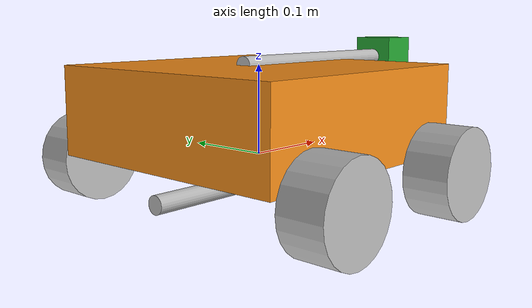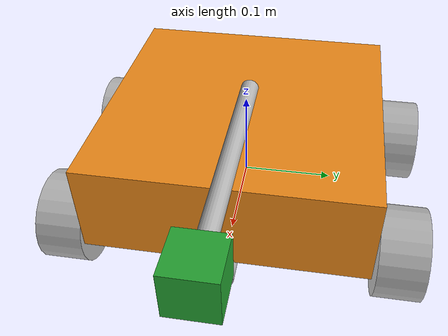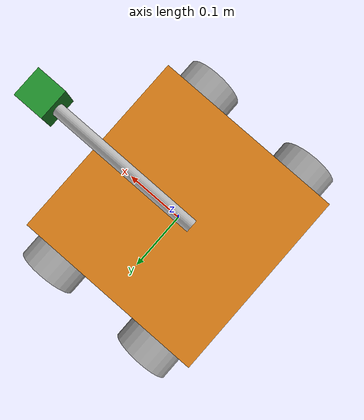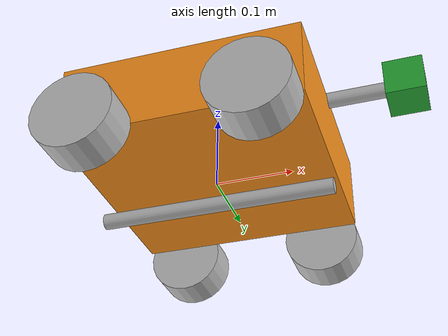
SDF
<?xml version='1.0'?>
<sdf version='1.6'>
  <model name='hitter_pole_fric'>
    <link name='chassis'>
      <pose frame=''>0 0 0 0 -0 0</pose>
      <inertial>
        <pose frame=''>0.000125 0 0.124988 0 -0 0</pose>
        <mass>20.01</mass>
        <inertia>
          <ixx>1.11251</ixx>
          <ixy>0</ixy>
          <ixz>6.24688e-05</ixz>
          <iyy>2.11313</iyy>
          <iyz>0</iyz>
          <izz>0.200626</izz>
        </inertia>
      </inertial>
      <self_collide>0</self_collide>
      <kinematic>0</kinematic>
      <velocity_decay/>
      <sensor name='camera1' type='camera'>
        <update_rate>30</update_rate>
        <camera name='chassis'>
          <horizontal_fov>1.39626</horizontal_fov>
          <image>
            <width>800</width>
            <height>800</height>
            <format>R8G8B8</format>
          </image>
          <clip>
            <near>0.02</near>
            <far>300</far>
          </clip>
        </camera>
        <plugin name='camera_controller' filename='libgazebo_ros_camera.so'>
          <alwaysOn>true</alwaysOn>
          <updateRate>0.0</updateRate>
          <cameraName>mybot/camera1</cameraName>
          <imageTopicName>image_raw</imageTopicName>
          <cameraInfoTopicName>camera_info</cameraInfoTopicName>
          <frameName>camera</frameName>
          <hackBaseline>0.07</hackBaseline>
          <distortionK1>0.0</distortionK1>
          <distortionK2>0.0</distortionK2>
          <distortionK3>0.0</distortionK3>
          <distortionT1>0.0</distortionT1>
          <distortionT2>0.0</distortionT2>
          <robotNamespace>/mybot/</robotNamespace>
        </plugin>
        <pose frame=''>0.25 0 0.1 3.14159 1.57079 3.14159</pose>
      </sensor>
      <visual name='chassis_visual_visual'>
        <pose frame=''>0 0 0.05 0 -0 0</pose>
        <geometry>
          <box>
            <size>0.3 0.3 0.1</size>
          </box>
        </geometry>
        <material>
          <script>
            <name>Gazebo/Orange</name>
            <uri>file://media/materials/scripts/gazebo.material</uri>
          </script>
          <ambient>1 0.5088 0.0468 1</ambient>
          <diffuse>1 0.5088 0.0468 1</diffuse>
          <specular>0.5 0.5 0.5 1</specular>
          <emissive>0 0 0 1</emissive>
        </material>
        <cast_shadows>1</cast_shadows>
        <transparency>0</transparency>
      </visual>
      <visual name='chassis_fixed_joint_lump__camera_pole_visual_1'>
        <pose frame=''>0.1 0 0.1 1.57075 0 1.57075</pose>
        <geometry>
          <cylinder>
            <length>0.25</length>
            <radius>0.01</radius>
          </cylinder>
        </geometry>
        <cast_shadows>1</cast_shadows>
        <transparency>0</transparency>
      </visual>
      <visual name='chassis_fixed_joint_lump__camera_visual_2'>
        <pose frame=''>0.25 0 0.1 3.14159 1.57079 3.14159</pose>
        <geometry>
          <box>
            <size>0.05 0.05 0.05</size>
          </box>
        </geometry>
        <material>
          <script>
            <name>Gazebo/Green</name>
            <uri>file://media/materials/scripts/gazebo.material</uri>
          </script>
          <ambient>0 1 0 1</ambient>
          <diffuse>0 1 0 1</diffuse>
          <specular>0.1 0.1 0.1 1</specular>
          <emissive>0 0 0 1</emissive>
        </material>
        <cast_shadows>1</cast_shadows>
        <transparency>0</transparency>
      </visual>
      <collision name='chassis_fixed_joint_lump__collision_collision'>
        <laser_retro>0</laser_retro>
        <max_contacts>10</max_contacts>
        <pose frame=''>0 0 0.05 0 -0 0</pose>
        <geometry>
          <box>
            <size>0.3 0.3 0.1</size>
          </box>
        </geometry>
        <surface>
          <friction>
            <ode>
              <mu>1</mu>
              <mu2>1</mu2>
              <fdir1>0 0 0</fdir1>
              <slip1>0</slip1>
              <slip2>0</slip2>
            </ode>
            <torsional>
              <coefficient>1</coefficient>
              <patch_radius>0</patch_radius>
              <surface_radius>0</surface_radius>
              <use_patch_radius>1</use_patch_radius>
              <ode>
                <slip>0</slip>
              </ode>
            </torsional>
          </friction>
          <bounce>
            <restitution_coefficient>0</restitution_coefficient>
            <threshold>1e+06</threshold>
          </bounce>
          <contact>
            <collide_without_contact>0</collide_without_contact>
            <collide_without_contact_bitmask>1</collide_without_contact_bitmask>
            <collide_bitmask>1</collide_bitmask>
            <ode>
              <soft_cfm>0</soft_cfm>
              <soft_erp>0.2</soft_erp>
              <kp>1e+13</kp>
              <kd>1</kd>
              <max_vel>0.01</max_vel>
              <min_depth>0</min_depth>
            </ode>
            <bullet>
              <split_impulse>1</split_impulse>
              <split_impulse_penetration_threshold>-0.01</split_impulse_penetration_threshold>
              <soft_cfm>0</soft_cfm>
              <soft_erp>0.2</soft_erp>
              <kp>1e+13</kp>
              <kd>1</kd>
            </bullet>
          </contact>
        </surface>
      </collision>
      <collision name='chassis_fixed_joint_lump__collision_collision_1'>
        <laser_retro>0</laser_retro>
        <max_contacts>10</max_contacts>
        <pose frame=''>0.1 0 0.1 3.14159 1.57079 3.14159</pose>
        <geometry>
          <cylinder>
            <radius>0.01</radius>
            <length>0.25</length>
          </cylinder>
        </geometry>
        <surface>
          <friction>
            <ode>
              <mu>1</mu>
              <mu2>1</mu2>
              <fdir1>0 0 0</fdir1>
              <slip1>0</slip1>
              <slip2>0</slip2>
            </ode>
            <torsional>
              <coefficient>1</coefficient>
              <patch_radius>0</patch_radius>
              <surface_radius>0</surface_radius>
              <use_patch_radius>1</use_patch_radius>
              <ode>
                <slip>0</slip>
              </ode>
            </torsional>
          </friction>
          <bounce>
            <restitution_coefficient>0</restitution_coefficient>
            <threshold>1e+06</threshold>
          </bounce>
          <contact>
            <collide_without_contact>0</collide_without_contact>
            <collide_without_contact_bitmask>1</collide_without_contact_bitmask>
            <collide_bitmask>1</collide_bitmask>
            <ode>
              <soft_cfm>0</soft_cfm>
              <soft_erp>0.2</soft_erp>
              <kp>1e+13</kp>
              <kd>1</kd>
              <max_vel>0.01</max_vel>
              <min_depth>0</min_depth>
            </ode>
            <bullet>
              <split_impulse>1</split_impulse>
              <split_impulse_penetration_threshold>-0.01</split_impulse_penetration_threshold>
              <soft_cfm>0</soft_cfm>
              <soft_erp>0.2</soft_erp>
              <kp>1e+13</kp>
              <kd>1</kd>
            </bullet>
          </contact>
        </surface>
      </collision>
      <collision name='chassis_fixed_joint_lump__camera_collision_2'>
        <laser_retro>0</laser_retro>
        <max_contacts>10</max_contacts>
        <pose frame=''>0.25 0 0.1 3.14159 1.57079 3.14159</pose>
        <geometry>
          <box>
            <size>0.05 0.05 0.05</size>
          </box>
        </geometry>
        <surface>
          <friction>
            <ode>
              <mu>1</mu>
              <mu2>1</mu2>
              <fdir1>0 0 0</fdir1>
              <slip1>0</slip1>
              <slip2>0</slip2>
            </ode>
            <torsional>
              <coefficient>1</coefficient>
              <patch_radius>0</patch_radius>
              <surface_radius>0</surface_radius>
              <use_patch_radius>1</use_patch_radius>
              <ode>
                <slip>0</slip>
              </ode>
            </torsional>
          </friction>
          <bounce>
            <restitution_coefficient>0</restitution_coefficient>
            <threshold>1e+06</threshold>
          </bounce>
          <contact>
            <collide_without_contact>0</collide_without_contact>
            <collide_without_contact_bitmask>1</collide_without_contact_bitmask>
            <collide_bitmask>1</collide_bitmask>
            <ode>
              <soft_cfm>0</soft_cfm>
              <soft_erp>0.2</soft_erp>
              <kp>1e+13</kp>
              <kd>1</kd>
              <max_vel>0.01</max_vel>
              <min_depth>0</min_depth>
            </ode>
            <bullet>
              <split_impulse>1</split_impulse>
              <split_impulse_penetration_threshold>-0.01</split_impulse_penetration_threshold>
              <soft_cfm>0</soft_cfm>
              <soft_erp>0.2</soft_erp>
              <kp>1e+13</kp>
              <kd>1</kd>
            </bullet>
          </contact>
        </surface>
      </collision>
    </link>
    <link name='gripper_pole'>
      <pose frame=''>-0.1 -0 -0.03 0 -0 0</pose>
      <inertial>
        <pose frame=''>0 0 0.1 0 -0 0</pose>
        <mass>10</mass>
        <inertia>
          <ixx>0.5</ixx>
          <ixy>0</ixy>
          <ixz>0</ixz>
          <iyy>1</iyy>
          <iyz>0</iyz>
          <izz>0.1</izz>
        </inertia>
      </inertial>
      <self_collide>0</self_collide>
      <kinematic>0</kinematic>
      <visual name='gripper_pole_visual'>
        <pose frame=''>0.1 0 0 1.57075 0 1.57075</pose>
        <geometry>
          <cylinder>
            <length>0.3</length>
            <radius>0.01</radius>
          </cylinder>
        </geometry>
        <cast_shadows>1</cast_shadows>
        <transparency>0</transparency>
      </visual>
      <collision name='gripper_pole_fixed_joint_lump__collision_collision'>
        <laser_retro>0</laser_retro>
        <max_contacts>10</max_contacts>
        <pose frame=''>0.1 0 0 3.14159 1.57079 3.14159</pose>
        <geometry>
          <cylinder>
            <radius>0.01</radius>
            <length>0.25</length>
          </cylinder>
        </geometry>
        <surface>
          <friction>
            <ode>
              <mu>1</mu>
              <mu2>1</mu2>
              <fdir1>0 0 0</fdir1>
              <slip1>0</slip1>
              <slip2>0</slip2>
            </ode>
            <torsional>
              <coefficient>1</coefficient>
              <patch_radius>0</patch_radius>
              <surface_radius>0</surface_radius>
              <use_patch_radius>1</use_patch_radius>
              <ode>
                <slip>0</slip>
              </ode>
            </torsional>
          </friction>
          <bounce>
            <restitution_coefficient>0</restitution_coefficient>
            <threshold>1e+06</threshold>
          </bounce>
          <contact>
            <collide_without_contact>0</collide_without_contact>
            <collide_without_contact_bitmask>1</collide_without_contact_bitmask>
            <collide_bitmask>1</collide_bitmask>
            <ode>
              <soft_cfm>0</soft_cfm>
              <soft_erp>0.2</soft_erp>
              <kp>1e+13</kp>
              <kd>1</kd>
              <max_vel>0.01</max_vel>
              <min_depth>0</min_depth>
            </ode>
            <bullet>
              <split_impulse>1</split_impulse>
              <split_impulse_penetration_threshold>-0.01</split_impulse_penetration_threshold>
              <soft_cfm>0</soft_cfm>
              <soft_erp>0.2</soft_erp>
              <kp>1e+13</kp>
              <kd>1</kd>
            </bullet>
          </contact>
        </surface>
      </collision>
    </link>
    <link name='left_back_wheel'>
      <pose frame=''>-0.1 0.18 -0.01 0 -0 0</pose>
      <inertial>
        <pose frame=''>0 0 0 -0 1.5707 1.5707</pose>
        <mass>5</mass>
        <inertia>
          <ixx>1</ixx>
          <ixy>0</ixy>
          <ixz>0</ixz>
          <iyy>1</iyy>
          <iyz>0</iyz>
          <izz>1</izz>
        </inertia>
      </inertial>
      <self_collide>0</self_collide>
      <kinematic>0</kinematic>
      <gravity>1</gravity>
      <visual name='left_back_wheel_fixed_joint_lump__left_wheel_visual_visual'>
        <pose frame=''>0 0 0 -3.13202 1.57079 -1.56132</pose>
        <geometry>
          <cylinder>
            <length>0.05</length>
            <radius>0.05</radius>
          </cylinder>
        </geometry>
        <cast_shadows>1</cast_shadows>
        <transparency>0</transparency>
        <material>
          <shader type='vertex'>
            <normal_map>__default__</normal_map>
          </shader>
        </material>
      </visual>
      <collision name='left_back_wheel_fixed_joint_lump__collision_collision'>
        <laser_retro>0</laser_retro>
        <max_contacts>10</max_contacts>
        <pose frame=''>0 0 0 3.14159 1.57079 -1.57089</pose>
        <geometry>
          <cylinder>
            <radius>0.05</radius>
            <length>0.05</length>
          </cylinder>
        </geometry>
        <surface>
          <friction>
            <ode>
              <mu>200</mu>
              <mu2>100</mu2>
              <fdir1>0 0 0</fdir1>
              <slip1>0</slip1>
              <slip2>0</slip2>
            </ode>
            <torsional>
              <coefficient>1</coefficient>
              <patch_radius>0</patch_radius>
              <surface_radius>0</surface_radius>
              <use_patch_radius>1</use_patch_radius>
              <ode>
                <slip>0</slip>
              </ode>
            </torsional>
          </friction>
          <bounce>
            <restitution_coefficient>0</restitution_coefficient>
            <threshold>1e+06</threshold>
          </bounce>
          <contact>
            <collide_without_contact>0</collide_without_contact>
            <collide_without_contact_bitmask>1</collide_without_contact_bitmask>
            <collide_bitmask>1</collide_bitmask>
            <ode>
              <soft_cfm>0</soft_cfm>
              <soft_erp>0.2</soft_erp>
              <kp>1e+13</kp>
              <kd>1</kd>
              <max_vel>0.01</max_vel>
              <min_depth>0</min_depth>
            </ode>
            <bullet>
              <split_impulse>1</split_impulse>
              <split_impulse_penetration_threshold>-0.01</split_impulse_penetration_threshold>
              <soft_cfm>0</soft_cfm>
              <soft_erp>0.2</soft_erp>
              <kp>1e+13</kp>
              <kd>1</kd>
            </bullet>
          </contact>
        </surface>
      </collision>
    </link>
    <link name='left_wheel'>
      <pose frame=''>0.1 0.18 -0.01 0 -0 0</pose>
      <inertial>
        <pose frame=''>0 0 0 -0 1.5707 1.5707</pose>
        <mass>5</mass>
        <inertia>
          <ixx>1</ixx>
          <ixy>0</ixy>
          <ixz>0</ixz>
          <iyy>1</iyy>
          <iyz>0</iyz>
          <izz>1</izz>
        </inertia>
      </inertial>
      <self_collide>0</self_collide>
      <kinematic>0</kinematic>
      <gravity>1</gravity>
      <visual name='left_wheel_visual_visual'>
        <pose frame=''>0 0 0 -3.13202 1.57079 -1.56132</pose>
        <geometry>
          <cylinder>
            <length>0.05</length>
            <radius>0.05</radius>
          </cylinder>
        </geometry>
        <cast_shadows>1</cast_shadows>
        <transparency>0</transparency>
        <material>
          <shader type='vertex'>
            <normal_map>__default__</normal_map>
          </shader>
        </material>
      </visual>
      <collision name='left_wheel_fixed_joint_lump__collision_collision'>
        <laser_retro>0</laser_retro>
        <max_contacts>10</max_contacts>
        <pose frame=''>0 0 0 3.14159 1.57079 -1.57089</pose>
        <geometry>
          <cylinder>
            <radius>0.05</radius>
            <length>0.05</length>
          </cylinder>
        </geometry>
        <surface>
          <friction>
            <ode>
              <mu>200</mu>
              <mu2>100</mu2>
              <fdir1>0 0 0</fdir1>
              <slip1>0</slip1>
              <slip2>0</slip2>
            </ode>
            <torsional>
              <coefficient>1</coefficient>
              <patch_radius>0</patch_radius>
              <surface_radius>0</surface_radius>
              <use_patch_radius>1</use_patch_radius>
              <ode>
                <slip>0</slip>
              </ode>
            </torsional>
          </friction>
          <bounce>
            <restitution_coefficient>0</restitution_coefficient>
            <threshold>1e+06</threshold>
          </bounce>
          <contact>
            <collide_without_contact>0</collide_without_contact>
            <collide_without_contact_bitmask>1</collide_without_contact_bitmask>
            <collide_bitmask>1</collide_bitmask>
            <ode>
              <soft_cfm>0</soft_cfm>
              <soft_erp>0.2</soft_erp>
              <kp>1e+13</kp>
              <kd>1</kd>
              <max_vel>0.01</max_vel>
              <min_depth>0</min_depth>
            </ode>
            <bullet>
              <split_impulse>1</split_impulse>
              <split_impulse_penetration_threshold>-0.01</split_impulse_penetration_threshold>
              <soft_cfm>0</soft_cfm>
              <soft_erp>0.2</soft_erp>
              <kp>1e+13</kp>
              <kd>1</kd>
            </bullet>
          </contact>
        </surface>
      </collision>
    </link>
    <link name='right_back_wheel'>
      <pose frame=''>-0.1 -0.18 -0.01 0 -0 0</pose>
      <inertial>
        <pose frame=''>0 0 0 -0 1.5707 1.5707</pose>
        <mass>5</mass>
        <inertia>
          <ixx>1</ixx>
          <ixy>0</ixy>
          <ixz>0</ixz>
          <iyy>1</iyy>
          <iyz>0</iyz>
          <izz>1</izz>
        </inertia>
      </inertial>
      <self_collide>0</self_collide>
      <kinematic>0</kinematic>
      <gravity>1</gravity>
      <visual name='right_back_wheel_fixed_joint_lump__right_wheel_visual_visual'>
        <pose frame=''>0 0 0 -3.13202 1.57079 -1.56132</pose>
        <geometry>
          <cylinder>
            <length>0.05</length>
            <radius>0.05</radius>
          </cylinder>
        </geometry>
        <cast_shadows>1</cast_shadows>
        <transparency>0</transparency>
        <material>
          <shader type='vertex'>
            <normal_map>__default__</normal_map>
          </shader>
        </material>
      </visual>
      <collision name='right_back_wheel_fixed_joint_lump__collision_collision'>
        <laser_retro>0</laser_retro>
        <max_contacts>10</max_contacts>
        <pose frame=''>0 0 0 3.14159 1.57079 -1.57089</pose>
        <geometry>
          <cylinder>
            <radius>0.05</radius>
            <length>0.05</length>
          </cylinder>
        </geometry>
        <surface>
          <friction>
            <ode>
              <mu>200</mu>
              <mu2>100</mu2>
              <fdir1>0 0 0</fdir1>
              <slip1>0</slip1>
              <slip2>0</slip2>
            </ode>
            <torsional>
              <coefficient>1</coefficient>
              <patch_radius>0</patch_radius>
              <surface_radius>0</surface_radius>
              <use_patch_radius>1</use_patch_radius>
              <ode>
                <slip>0</slip>
              </ode>
            </torsional>
          </friction>
          <bounce>
            <restitution_coefficient>0</restitution_coefficient>
            <threshold>1e+06</threshold>
          </bounce>
          <contact>
            <collide_without_contact>0</collide_without_contact>
            <collide_without_contact_bitmask>1</collide_without_contact_bitmask>
            <collide_bitmask>1</collide_bitmask>
            <ode>
              <soft_cfm>0</soft_cfm>
              <soft_erp>0.2</soft_erp>
              <kp>1e+13</kp>
              <kd>1</kd>
              <max_vel>0.01</max_vel>
              <min_depth>0</min_depth>
            </ode>
            <bullet>
              <split_impulse>1</split_impulse>
              <split_impulse_penetration_threshold>-0.01</split_impulse_penetration_threshold>
              <soft_cfm>0</soft_cfm>
              <soft_erp>0.2</soft_erp>
              <kp>1e+13</kp>
              <kd>1</kd>
            </bullet>
          </contact>
        </surface>
      </collision>
    </link>
    <link name='right_wheel'>
      <pose frame=''>0.1 -0.18 -0.01 0 -0 0</pose>
      <inertial>
        <pose frame=''>0 0 0 -0 1.5707 1.5707</pose>
        <mass>5</mass>
        <inertia>
          <ixx>1</ixx>
          <ixy>0</ixy>
          <ixz>0</ixz>
          <iyy>1</iyy>
          <iyz>0</iyz>
          <izz>1</izz>
        </inertia>
      </inertial>
      <self_collide>0</self_collide>
      <kinematic>0</kinematic>
      <gravity>1</gravity>
      <visual name='right_wheel_visual_visual'>
        <pose frame=''>0 0 0 -3.13202 1.57079 -1.56132</pose>
        <geometry>
          <cylinder>
            <length>0.05</length>
            <radius>0.05</radius>
          </cylinder>
        </geometry>
        <cast_shadows>1</cast_shadows>
        <transparency>0</transparency>
        <material>
          <shader type='vertex'>
            <normal_map>__default__</normal_map>
          </shader>
        </material>
      </visual>
      <collision name='right_wheel_fixed_joint_lump__collision_collision'>
        <laser_retro>0</laser_retro>
        <max_contacts>10</max_contacts>
        <pose frame=''>0 0 0 3.14159 1.57079 -1.57089</pose>
        <geometry>
          <cylinder>
            <radius>0.05</radius>
            <length>0.05</length>
          </cylinder>
        </geometry>
        <surface>
          <friction>
            <ode>
              <mu>200</mu>
              <mu2>100</mu2>
              <fdir1>0 0 0</fdir1>
              <slip1>0</slip1>
              <slip2>0</slip2>
            </ode>
            <torsional>
              <coefficient>1</coefficient>
              <patch_radius>0</patch_radius>
              <surface_radius>0</surface_radius>
              <use_patch_radius>1</use_patch_radius>
              <ode>
                <slip>0</slip>
              </ode>
            </torsional>
          </friction>
          <bounce>
            <restitution_coefficient>0</restitution_coefficient>
            <threshold>1e+06</threshold>
          </bounce>
          <contact>
            <collide_without_contact>0</collide_without_contact>
            <collide_without_contact_bitmask>1</collide_without_contact_bitmask>
            <collide_bitmask>1</collide_bitmask>
            <ode>
              <soft_cfm>0</soft_cfm>
              <soft_erp>0.2</soft_erp>
              <kp>1e+13</kp>
              <kd>1</kd>
              <max_vel>0.01</max_vel>
              <min_depth>0</min_depth>
            </ode>
            <bullet>
              <split_impulse>1</split_impulse>
              <split_impulse_penetration_threshold>-0.01</split_impulse_penetration_threshold>
              <soft_cfm>0</soft_cfm>
              <soft_erp>0.2</soft_erp>
              <kp>1e+13</kp>
              <kd>1</kd>
            </bullet>
          </contact>
        </surface>
      </collision>
    </link>
    <joint name='gripper_extension' type='prismatic'>
      <parent>chassis</parent>
      <child>gripper_pole</child>
      <pose frame=''>0 0 0 0 -0 0</pose>
      <axis>
        <xyz>1 0 0</xyz>
        <use_parent_model_frame>1</use_parent_model_frame>
        <limit>
          <lower>0</lower>
          <upper>0.2</upper>
          <effort>1000</effort>
          <velocity>10</velocity>
        </limit>
        <dynamics>
          <spring_reference>0</spring_reference>
          <spring_stiffness>0</spring_stiffness>
          <damping>0</damping>
          <friction>0</friction>
        </dynamics>
      </axis>
      <physics>
        <ode>
          <limit>
            <cfm>0</cfm>
            <erp>0.2</erp>
          </limit>
          <suspension>
            <cfm>0</cfm>
            <erp>0.2</erp>
          </suspension>
        </ode>
      </physics>
    </joint>
    <joint name='left_back_wheel_hinge' type='revolute'>
      <parent>chassis</parent>
      <child>left_back_wheel</child>
      <pose frame=''>0 0 0 0 -0 0</pose>
      <axis>
        <xyz>0 1 0</xyz>
        <use_parent_model_frame>1</use_parent_model_frame>
        <limit>
          <lower>-1e+16</lower>
          <upper>1e+16</upper>
          <effort>-1</effort>
          <velocity>-1</velocity>
        </limit>
        <dynamics>
          <spring_reference>0</spring_reference>
          <spring_stiffness>0</spring_stiffness>
          <damping>0</damping>
          <friction>0</friction>
        </dynamics>
      </axis>
      <physics>
        <ode>
          <limit>
            <cfm>0</cfm>
            <erp>0.2</erp>
          </limit>
          <suspension>
            <cfm>0</cfm>
            <erp>0.2</erp>
          </suspension>
        </ode>
      </physics>
    </joint>
    <joint name='left_wheel_hinge' type='revolute'>
      <parent>chassis</parent>
      <child>left_wheel</child>
      <pose frame=''>0 0 0 0 -0 0</pose>
      <axis>
        <xyz>0 1 0</xyz>
        <use_parent_model_frame>1</use_parent_model_frame>
        <limit>
          <lower>-1e+16</lower>
          <upper>1e+16</upper>
          <effort>-1</effort>
          <velocity>-1</velocity>
        </limit>
        <dynamics>
          <spring_reference>0</spring_reference>
          <spring_stiffness>0</spring_stiffness>
          <damping>0</damping>
          <friction>0</friction>
        </dynamics>
      </axis>
      <physics>
        <ode>
          <limit>
            <cfm>0</cfm>
            <erp>0.2</erp>
          </limit>
          <suspension>
            <cfm>0</cfm>
            <erp>0.2</erp>
          </suspension>
        </ode>
      </physics>
    </joint>
    <joint name='right_back_wheel_hinge' type='revolute'>
      <parent>chassis</parent>
      <child>right_back_wheel</child>
      <pose frame=''>0 0 0 0 -0 0</pose>
      <axis>
        <xyz>0 1 0</xyz>
        <use_parent_model_frame>1</use_parent_model_frame>
        <limit>
          <lower>-1e+16</lower>
          <upper>1e+16</upper>
          <effort>-1</effort>
          <velocity>-1</velocity>
        </limit>
        <dynamics>
          <spring_reference>0</spring_reference>
          <spring_stiffness>0</spring_stiffness>
          <damping>0</damping>
          <friction>0</friction>
        </dynamics>
      </axis>
      <physics>
        <ode>
          <limit>
            <cfm>0</cfm>
            <erp>0.2</erp>
          </limit>
          <suspension>
            <cfm>0</cfm>
            <erp>0.2</erp>
          </suspension>
        </ode>
      </physics>
    </joint>
    <joint name='right_wheel_hinge' type='revolute'>
      <parent>chassis</parent>
      <child>right_wheel</child>
      <pose frame=''>0 0 0 0 -0 0</pose>
      <axis>
        <xyz>0 1 0</xyz>
        <use_parent_model_frame>1</use_parent_model_frame>
        <limit>
          <lower>-1e+16</lower>
          <upper>1e+16</upper>
          <effort>-1</effort>
          <velocity>-1</velocity>
        </limit>
        <dynamics>
          <spring_reference>0</spring_reference>
          <spring_stiffness>0</spring_stiffness>
          <damping>0</damping>
          <friction>0</friction>
        </dynamics>
      </axis>
      <physics>
        <ode>
          <limit>
            <cfm>0</cfm>
            <erp>0.2</erp>
          </limit>
          <suspension>
            <cfm>0</cfm>
            <erp>0.2</erp>
          </suspension>
        </ode>
      </physics>
    </joint>
    <static>0</static>
    <allow_auto_disable>1</allow_auto_disable>
    <plugin name='differential_drive_controller' filename='libgazebo_ros_diff_drive.so'>
      <legacyMode>false</legacyMode>
      <alwaysOn>true</alwaysOn>
      <updateRate>20</updateRate>
      <leftJoint>left_wheel_hinge</leftJoint>
      <rightJoint>right_wheel_hinge</rightJoint>
      <wheelDiameter>0.1</wheelDiameter>
      <torque>20</torque>
      <commandTopic>cmd_vel</commandTopic>
      <odometryTopic>odom</odometryTopic>
      <odometryFrame>odom</odometryFrame>
      <robotBaseFrame>chassis</robotBaseFrame>
      <robotNamespace>/mybot</robotNamespace>
    </plugin>
    <plugin name='gazebo_ros_control' filename='libgazebo_ros_control.so'>
      <robotNamespace>/mybot</robotNamespace>
      <robotSimType>gazebo_ros_control/DefaultRobotHWSim</robotSimType>
      <legacyModeNS>true</legacyModeNS>
    </plugin>
  </model>
</sdf>
